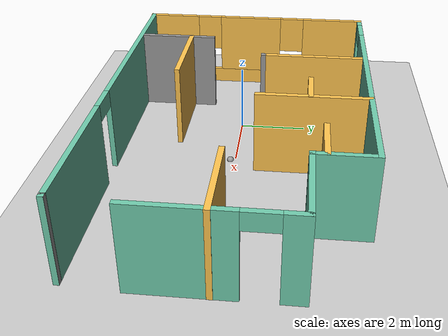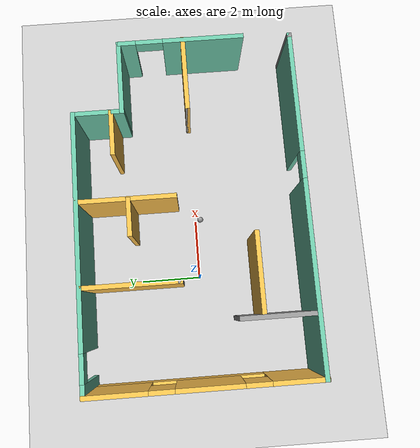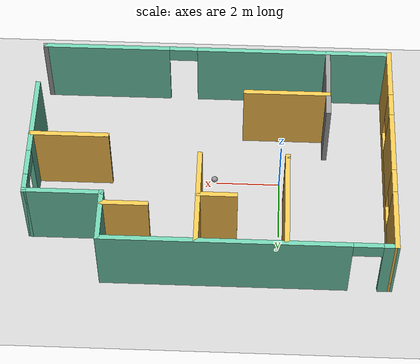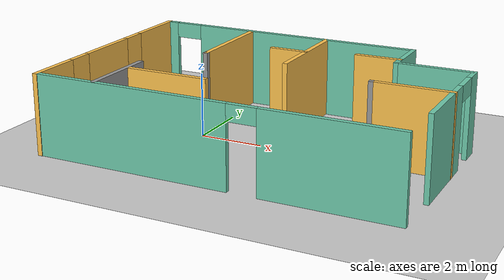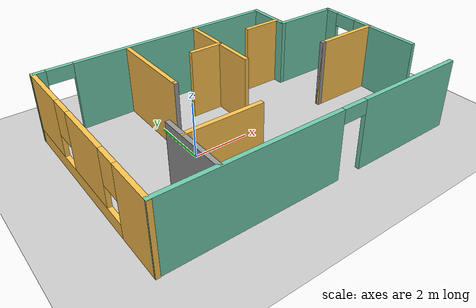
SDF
<sdf version="1.6">
 <world name="default">
  <plugin filename="libcollision_map_creator.so" name="collision_map_creator"/>
  <model name="ground_plane">
   <static>1</static>
   <link name="link">
    <collision name="collision">
     <geometry><plane><normal>0 0 1</normal><size>100 100</size></plane></geometry>
     <surface><friction><ode><mu>100</mu><mu2>50</mu2></ode></friction></surface>
    </collision>
    <visual name="visual">
     <cast_shadows>0</cast_shadows>
     <geometry><plane><normal>0 0 1</normal><size>100 100</size></plane></geometry>
     <material>
      <script><uri>file://media/materials/scripts/gazebo.material</uri><name>Gazebo/Grey</name></script>
     </material>
    </visual>
   </link>
  </model>
  <light name="sun" type="directional">
   <pose>0 0 10 0 -0 0</pose>
   <diffuse>0.8 0.8 0.8 1</diffuse>
   <specular>0.1 0.1 0.1 1</specular>
   <attenuation>
    <range>1000</range>
    <constant>0.9</constant>
    <linear>0.01</linear>
    <quadratic>0.001</quadratic>
   </attenuation>
   <direction>-0.5 0.5 -1</direction>
  </light>
  <gravity>0 0 -9.8</gravity>
  <magnetic_field>6e-06 2.3e-05 -4.2e-05</magnetic_field>
  <atmosphere type="adiabatic"/>
  <physics name="default_physics" default="0" type="ode">
   <max_step_size>0.001</max_step_size>
   <real_time_factor>1</real_time_factor>
   <real_time_update_rate>1000</real_time_update_rate>
  </physics>
  <scene><ambient>0.4 0.4 0.4 1</ambient><background>0.7 0.7 0.7 1</background><shadows>1</shadows></scene>
  <spherical_coordinates>
   <surface_model>EARTH_WGS84</surface_model>
   <latitude_deg>0</latitude_deg>
   <longitude_deg>0</longitude_deg>
   <elevation>0</elevation>
   <heading_deg>0</heading_deg>
  </spherical_coordinates>
  <model name="yuwei.world">
   <pose>2.17403 0.111665 0 0 -0 0</pose>
   <link name="Wall_0">
    <pose>-5.59742 0 0 0 -0 1.5726</pose>
    <visual name="Wall_0_Visual_0">
     <pose>-2.8701 0 1.25 0 -0 0</pose>
     <geometry><box><size>1.72648 0.15 2.5</size></box></geometry>
     <material>
      <script><uri>file://media/materials/scripts/gazebo.material</uri><name>Gazebo/Grey</name></script>
      <ambient>1 0.764706 0.305882 1</ambient>
     </material>
    </visual>
    <collision name="Wall_0_Collision_0">
     <geometry><box><size>1.72648 0.15 2.5</size></box></geometry>
     <pose>-2.8701 0 1.25 0 -0 0</pose>
    </collision>
    <visual name="Wall_0_Visual_1">
     <pose>0.86324 0 0.25 0 -0 0</pose>
     <geometry><box><size>5.7402 0.15 0.5</size></box></geometry>
     <material>
      <script><uri>file://media/materials/scripts/gazebo.material</uri><name>Gazebo/Grey</name></script>
      <ambient>1 0.764706 0.305882 1</ambient>
     </material>
    </visual>
    <collision name="Wall_0_Collision_1">
     <geometry><box><size>5.7402 0.15 0.5</size></box></geometry>
     <pose>0.86324 0 0.25 0 -0 0</pose>
    </collision>
    <visual name="Wall_0_Visual_2">
     <pose>-0.146775 0 1.5 0 -0 0</pose>
     <geometry><box><size>2.12017 0.15 2</size></box></geometry>
     <material>
      <script><uri>file://media/materials/scripts/gazebo.material</uri><name>Gazebo/Grey</name></script>
      <ambient>1 0.764706 0.305882 1</ambient>
     </material>
    </visual>
    <collision name="Wall_0_Collision_2">
     <geometry><box><size>2.12017 0.15 2</size></box></geometry>
     <pose>-0.146775 0 1.5 0 -0 0</pose>
    </collision>
    <visual name="Wall_0_Visual_3">
     <pose>2.72333 0 1.5 0 -0 0</pose>
     <geometry><box><size>2.02003 0.15 2</size></box></geometry>
     <material>
      <script><uri>file://media/materials/scripts/gazebo.material</uri><name>Gazebo/Grey</name></script>
      <ambient>1 0.764706 0.305882 1</ambient>
     </material>
    </visual>
    <collision name="Wall_0_Collision_3">
     <geometry><box><size>2.02003 0.15 2</size></box></geometry>
     <pose>2.72333 0 1.5 0 -0 0</pose>
    </collision>
    <visual name="Wall_0_Visual_4">
     <pose>-1.60686 0 1.9 0 -0 0</pose>
     <geometry><box><size>0.8 0.15 1.2</size></box></geometry>
     <material>
      <script><uri>file://media/materials/scripts/gazebo.material</uri><name>Gazebo/Grey</name></script>
      <ambient>1 0.764706 0.305882 1</ambient>
     </material>
    </visual>
    <collision name="Wall_0_Collision_4">
     <geometry><box><size>0.8 0.15 1.2</size></box></geometry>
     <pose>-1.60686 0 1.9 0 -0 0</pose>
    </collision>
    <visual name="Wall_0_Visual_5">
     <pose>1.31331 0 1.9 0 -0 0</pose>
     <geometry><box><size>0.8 0.15 1.2</size></box></geometry>
     <material>
      <script><uri>file://media/materials/scripts/gazebo.material</uri><name>Gazebo/Grey</name></script>
      <ambient>1 0.764706 0.305882 1</ambient>
     </material>
    </visual>
    <collision name="Wall_0_Collision_5">
     <geometry><box><size>0.8 0.15 1.2</size></box></geometry>
     <pose>1.31331 0 1.9 0 -0 0</pose>
    </collision>
   </link>
   <link name="Wall_1">
    <pose>-1.17904 3.65834 0 0 -0 0</pose>
    <visual name="Wall_1_Visual_0">
     <pose>-4.26539 0 1.25 0 -0 0</pose>
     <geometry><box><size>0.469225 0.15 2.5</size></box></geometry>
     <material>
      <script><uri>file://media/materials/scripts/gazebo.material</uri><name>Gazebo/Grey</name></script>
      <ambient>0.435294 0.796078 0.67451 1</ambient>
     </material>
    </visual>
    <collision name="Wall_1_Collision_0">
     <geometry><box><size>0.469225 0.15 2.5</size></box></geometry>
     <pose>-4.26539 0 1.25 0 -0 0</pose>
    </collision>
    <visual name="Wall_1_Visual_1">
     <pose>0.684613 0 1.25 0 -0 0</pose>
     <geometry><box><size>7.63077 0.15 2.5</size></box></geometry>
     <material>
      <script><uri>file://media/materials/scripts/gazebo.material</uri><name>Gazebo/Grey</name></script>
      <ambient>0.435294 0.796078 0.67451 1</ambient>
     </material>
    </visual>
    <collision name="Wall_1_Collision_1">
     <geometry><box><size>7.63077 0.15 2.5</size></box></geometry>
     <pose>0.684613 0 1.25 0 -0 0</pose>
    </collision>
    <visual name="Wall_1_Visual_2">
     <pose>-3.58078 0 2.25 0 -0 0</pose>
     <geometry><box><size>0.9 0.15 0.5</size></box></geometry>
     <material>
      <script><uri>file://media/materials/scripts/gazebo.material</uri><name>Gazebo/Grey</name></script>
      <ambient>0.435294 0.796078 0.67451 1</ambient>
     </material>
    </visual>
    <collision name="Wall_1_Collision_2">
     <geometry><box><size>0.9 0.15 0.5</size></box></geometry>
     <pose>-3.58078 0 2.25 0 -0 0</pose>
    </collision>
   </link>
   <link name="Wall_10">
    <collision name="Wall_10_Collision">
     <geometry><box><size>0.15 0.15 2.5</size></box></geometry>
     <pose>0 0 1.25 0 -0 0</pose>
    </collision>
    <visual name="Wall_10_Visual">
     <pose>0 0 1.25 0 -0 0</pose>
     <geometry><box><size>0.15 0.15 2.5</size></box></geometry>
     <material>
      <script><uri>file://media/materials/scripts/gazebo.material</uri><name>Gazebo/Grey</name></script>
      <ambient>1 1 1 1</ambient>
     </material>
    </visual>
    <pose>-2.36608 0.522435 0 0 -0 0</pose>
   </link>
   <link name="Wall_12">
    <collision name="Wall_12_Collision">
     <geometry><box><size>3.25 0.15 2.5</size></box></geometry>
     <pose>0 0 1.25 0 -0 0</pose>
    </collision>
    <visual name="Wall_12_Visual">
     <pose>0 0 1.25 0 -0 0</pose>
     <geometry><box><size>3.25 0.15 2.5</size></box></geometry>
     <material>
      <script><uri>file://media/materials/scripts/gazebo.material</uri><name>Gazebo/Grey</name></script>
      <ambient>1 0.764706 0.305882 1</ambient>
     </material>
    </visual>
    <pose>0.331815 2.08566 0 0 0 -1.5708</pose>
   </link>
   <link name="Wall_14">
    <collision name="Wall_14_Collision">
     <geometry><box><size>1.25 0.15 2.5</size></box></geometry>
     <pose>0 0 1.25 0 -0 0</pose>
    </collision>
    <visual name="Wall_14_Visual">
     <pose>0 0 1.25 0 -0 0</pose>
     <geometry><box><size>1.25 0.15 2.5</size></box></geometry>
     <material>
      <script><uri>file://media/materials/scripts/gazebo.material</uri><name>Gazebo/Grey</name></script>
      <ambient>1 0.764706 0.305882 1</ambient>
     </material>
    </visual>
    <pose>-0.244635 2.00899 0 0 -0 3.14159</pose>
   </link>
   <link name="Wall_16">
    <collision name="Wall_16_Collision">
     <geometry><box><size>2.5 0.15 2.5</size></box></geometry>
     <pose>0 0 1.25 0 -0 0</pose>
    </collision>
    <visual name="Wall_16_Visual">
     <pose>0 0 1.25 0 -0 0</pose>
     <geometry><box><size>2.5 0.15 2.5</size></box></geometry>
     <material>
      <script><uri>file://media/materials/scripts/gazebo.material</uri><name>Gazebo/Grey</name></script>
      <ambient>1 1 1 1</ambient>
     </material>
    </visual>
    <pose>-3.63016 -2.43196 0 0 -0 1.5708</pose>
   </link>
   <link name="Wall_18">
    <collision name="Wall_18_Collision">
     <geometry><box><size>1.5 0.15 2.5</size></box></geometry>
     <pose>0 0 1.25 0 -0 0</pose>
    </collision>
    <visual name="Wall_18_Visual">
     <pose>0 0 1.25 0 -0 0</pose>
     <geometry><box><size>1.5 0.15 2.5</size></box></geometry>
     <material>
      <script><uri>file://media/materials/scripts/gazebo.material</uri><name>Gazebo/Grey</name></script>
      <ambient>1 0.764706 0.305882 1</ambient>
     </material>
    </visual>
    <pose>2.55309 2.41896 0 0 -0 3.14159</pose>
   </link>
   <link name="Wall_2">
    <collision name="Wall_2_Collision">
     <geometry><box><size>1.75 0.15 2.5</size></box></geometry>
     <pose>0 0 1.25 0 -0 0</pose>
    </collision>
    <visual name="Wall_2_Visual">
     <pose>0 0 1.25 0 -0 0</pose>
     <geometry><box><size>1.75 0.15 2.5</size></box></geometry>
     <material>
      <script><uri>file://media/materials/scripts/gazebo.material</uri><name>Gazebo/Grey</name></script>
      <ambient>0.435294 0.796078 0.67451 1</ambient>
     </material>
    </visual>
    <pose>3.24596 2.85833 0 0 0 -1.5708</pose>
   </link>
   <link name="Wall_20">
    <collision name="Wall_20_Collision">
     <geometry><box><size>2.5 0.15 2.5</size></box></geometry>
     <pose>0 0 1.25 0 -0 0</pose>
    </collision>
    <visual name="Wall_20_Visual">
     <pose>0 0 1.25 0 -0 0</pose>
     <geometry><box><size>2.5 0.15 2.5</size></box></geometry>
     <material>
      <script><uri>file://media/materials/scripts/gazebo.material</uri><name>Gazebo/Grey</name></script>
      <ambient>1 0.764706 0.305882 1</ambient>
     </material>
    </visual>
    <pose>4.42917 -0.083377 0 0 -0 3.14159</pose>
   </link>
   <link name="Wall_21">
    <collision name="Wall_21_Collision">
     <geometry><box><size>0.15 0.15 2.5</size></box></geometry>
     <pose>0 0 1.25 0 -0 0</pose>
    </collision>
    <visual name="Wall_21_Visual">
     <pose>0 0 1.25 0 -0 0</pose>
     <geometry><box><size>0.15 0.15 2.5</size></box></geometry>
     <material>
      <script><uri>file://media/materials/scripts/gazebo.material</uri><name>Gazebo/Grey</name></script>
      <ambient>1 1 1 1</ambient>
     </material>
    </visual>
    <pose>3.25417 -0.083377 0 0 -0 0</pose>
   </link>
   <link name="Wall_23">
    <collision name="Wall_23_Collision">
     <geometry><box><size>2.75 0.15 2.5</size></box></geometry>
     <pose>0 0 1.25 0 -0 0</pose>
    </collision>
    <visual name="Wall_23_Visual">
     <pose>0 0 1.25 0 -0 0</pose>
     <geometry><box><size>2.75 0.15 2.5</size></box></geometry>
     <material>
      <script><uri>file://media/materials/scripts/gazebo.material</uri><name>Gazebo/Grey</name></script>
      <ambient>1 0.764706 0.305882 1</ambient>
     </material>
    </visual>
    <pose>-2.3297 -1.95481 0 0 -0 3.14159</pose>
   </link>
   <link name="Wall_3">
    <collision name="Wall_3_Collision">
     <geometry><box><size>2.5 0.15 2.5</size></box></geometry>
     <pose>0 0 1.25 0 -0 0</pose>
    </collision>
    <visual name="Wall_3_Visual">
     <pose>0 0 1.25 0 -0 0</pose>
     <geometry><box><size>2.5 0.15 2.5</size></box></geometry>
     <material>
      <script><uri>file://media/materials/scripts/gazebo.material</uri><name>Gazebo/Grey</name></script>
      <ambient>0.435294 0.796078 0.67451 1</ambient>
     </material>
    </visual>
    <pose>4.42096 2.05834 0 0 -0 0</pose>
   </link>
   <link name="Wall_4">
    <pose>5.59596 0.008335 0 0 0 -1.5708</pose>
    <visual name="Wall_4_Visual_0">
     <pose>-1.80133 0 1.25 0 -0 0</pose>
     <geometry><box><size>0.647348 0.15 2.5</size></box></geometry>
     <material>
      <script><uri>file://media/materials/scripts/gazebo.material</uri><name>Gazebo/Grey</name></script>
      <ambient>0.435294 0.796078 0.67451 1</ambient>
     </material>
    </visual>
    <collision name="Wall_4_Collision_0">
     <geometry><box><size>0.647348 0.15 2.5</size></box></geometry>
     <pose>-1.80133 0 1.25 0 -0 0</pose>
    </collision>
    <visual name="Wall_4_Visual_1">
     <pose>0.773674 0 1.25 0 -0 0</pose>
     <geometry><box><size>2.70265 0.15 2.5</size></box></geometry>
     <material>
      <script><uri>file://media/materials/scripts/gazebo.material</uri><name>Gazebo/Grey</name></script>
      <ambient>0.435294 0.796078 0.67451 1</ambient>
     </material>
    </visual>
    <collision name="Wall_4_Collision_1">
     <geometry><box><size>2.70265 0.15 2.5</size></box></geometry>
     <pose>0.773674 0 1.25 0 -0 0</pose>
    </collision>
    <visual name="Wall_4_Visual_2">
     <pose>-1.02765 0 2.25 0 -0 0</pose>
     <geometry><box><size>0.9 0.15 0.5</size></box></geometry>
     <material>
      <script><uri>file://media/materials/scripts/gazebo.material</uri><name>Gazebo/Grey</name></script>
      <ambient>0.435294 0.796078 0.67451 1</ambient>
     </material>
    </visual>
    <collision name="Wall_4_Collision_2">
     <geometry><box><size>0.9 0.15 0.5</size></box></geometry>
     <pose>-1.02765 0 2.25 0 -0 0</pose>
    </collision>
   </link>
   <link name="Wall_6">
    <collision name="Wall_6_Collision">
     <geometry><box><size>0.15 0.15 2.5</size></box></geometry>
     <pose>0 0 1.25 0 -0 0</pose>
    </collision>
    <visual name="Wall_6_Visual">
     <pose>0 0 1.25 0 -0 0</pose>
     <geometry><box><size>0.15 0.15 2.5</size></box></geometry>
     <material>
      <script><uri>file://media/materials/scripts/gazebo.material</uri><name>Gazebo/Grey</name></script>
      <ambient>1 1 1 1</ambient>
     </material>
    </visual>
    <pose>5.50919 -3.64085 0 0 -0 0</pose>
   </link>
   <link name="Wall_7">
    <pose>-0.04081 -3.64085 0 0 -0 3.14159</pose>
    <visual name="Wall_7_Visual_0">
     <pose>-3.5779 0 1.25 0 -0 0</pose>
     <geometry><box><size>4.09421 0.15 2.5</size></box></geometry>
     <material>
      <script><uri>file://media/materials/scripts/gazebo.material</uri><name>Gazebo/Grey</name></script>
      <ambient>0.435294 0.796078 0.67451 1</ambient>
     </material>
    </visual>
    <collision name="Wall_7_Collision_0">
     <geometry><box><size>4.09421 0.15 2.5</size></box></geometry>
     <pose>-3.5779 0 1.25 0 -0 0</pose>
    </collision>
    <visual name="Wall_7_Visual_1">
     <pose>2.4971 0 1.25 0 -0 0</pose>
     <geometry><box><size>6.25579 0.15 2.5</size></box></geometry>
     <material>
      <script><uri>file://media/materials/scripts/gazebo.material</uri><name>Gazebo/Grey</name></script>
      <ambient>0.435294 0.796078 0.67451 1</ambient>
     </material>
    </visual>
    <collision name="Wall_7_Collision_1">
     <geometry><box><size>6.25579 0.15 2.5</size></box></geometry>
     <pose>2.4971 0 1.25 0 -0 0</pose>
    </collision>
    <visual name="Wall_7_Visual_2">
     <pose>-1.08079 0 2.25 0 -0 0</pose>
     <geometry><box><size>0.9 0.15 0.5</size></box></geometry>
     <material>
      <script><uri>file://media/materials/scripts/gazebo.material</uri><name>Gazebo/Grey</name></script>
      <ambient>0.435294 0.796078 0.67451 1</ambient>
     </material>
    </visual>
    <collision name="Wall_7_Collision_2">
     <geometry><box><size>0.9 0.15 0.5</size></box></geometry>
     <pose>-1.08079 0 2.25 0 -0 0</pose>
    </collision>
   </link>
   <link name="Wall_9">
    <collision name="Wall_9_Collision">
     <geometry><box><size>3.25 0.15 2.5</size></box></geometry>
     <pose>0 0 1.25 0 -0 0</pose>
    </collision>
    <visual name="Wall_9_Visual">
     <pose>0 0 1.25 0 -0 0</pose>
     <geometry><box><size>3.25 0.15 2.5</size></box></geometry>
     <material>
      <script><uri>file://media/materials/scripts/gazebo.material</uri><name>Gazebo/Grey</name></script>
      <ambient>1 0.764706 0.305882 1</ambient>
     </material>
    </visual>
    <pose>-2.36608 2.07244 0 0 0 -1.5708</pose>
   </link>
   <static>1</static>
  </model>
  <model name="my_ball">
   <link name="link_0">
    <inertial>
     <mass>1</mass>
     <inertia><ixx>0.1</ixx><ixy>0</ixy><ixz>0</ixz><iyy>0.1</iyy><iyz>0</iyz><izz>0.1</izz></inertia>
    </inertial>
    <visual name="visual">
     <geometry><sphere><radius>0.1</radius></sphere></geometry>
     <material>
      <lighting>1</lighting>
      <script><uri>file://media/materials/scripts/gazebo.material</uri><name>Gazebo/Grey</name></script>
      <ambient>1 1 1 1</ambient>
      <diffuse>0.7 0.7 0.7 1</diffuse>
      <specular>0.01 0.01 0.01 1</specular>
      <emissive>1 1 1 1</emissive>
      <shader type="vertex"><normal_map>__default__</normal_map></shader>
     </material>
    </visual>
    <collision name="collision">
     <geometry><sphere><radius>0.1</radius></sphere></geometry>
     <surface>
      <friction>
       <ode><mu>1</mu><mu2>1</mu2><fdir1>0 0 0</fdir1><slip1>0</slip1><slip2>0</slip2></ode>
       <torsional>
        <coefficient>1</coefficient>
        <patch_radius>0</patch_radius>
        <surface_radius>0</surface_radius>
        <use_patch_radius>1</use_patch_radius>
        <ode><slip>0</slip></ode>
       </torsional>
      </friction>
      <bounce><restitution_coefficient>0</restitution_coefficient><threshold>1e+06</threshold></bounce>
      <contact>
       <collide_without_contact>0</collide_without_contact>
       <collide_without_contact_bitmask>1</collide_without_contact_bitmask>
       <collide_bitmask>1</collide_bitmask>
       <ode>
        <soft_cfm>0</soft_cfm>
        <soft_erp>0.2</soft_erp>
        <kp>1e+13</kp>
        <kd>1</kd>
        <max_vel>0.01</max_vel>
        <min_depth>0</min_depth>
       </ode>
       <bullet>
        <split_impulse>1</split_impulse>
        <split_impulse_penetration_threshold>-0.01</split_impulse_penetration_threshold>
        <soft_cfm>0</soft_cfm>
        <soft_erp>0.2</soft_erp>
        <kp>1e+13</kp>
        <kd>1</kd>
       </bullet>
      </contact>
     </surface>
    </collision>
   </link>
   <static>0</static>
   <pose>2.08033 -0.160879 0 0 -0 0</pose>
  </model>
 </world>
</sdf>
